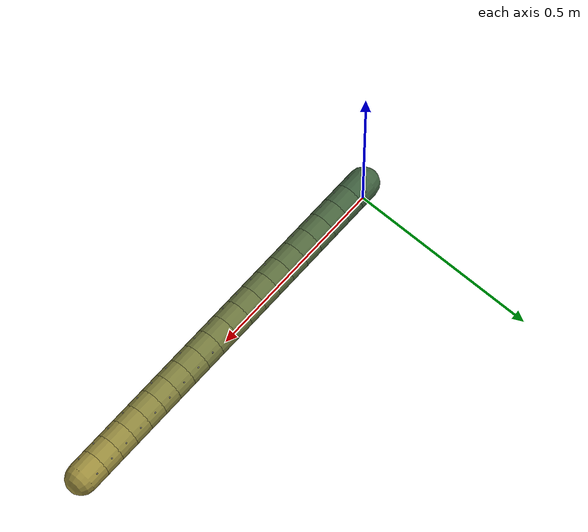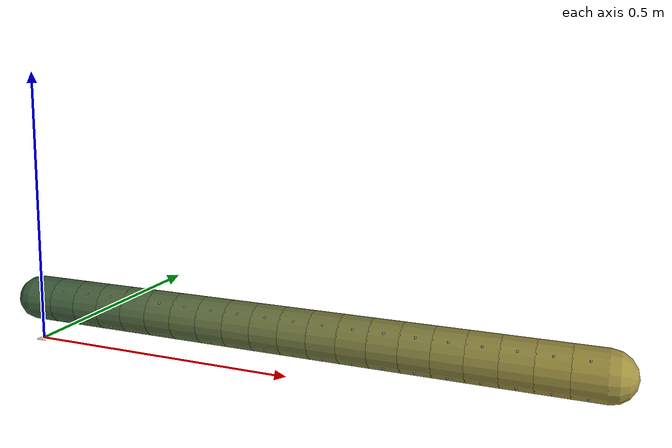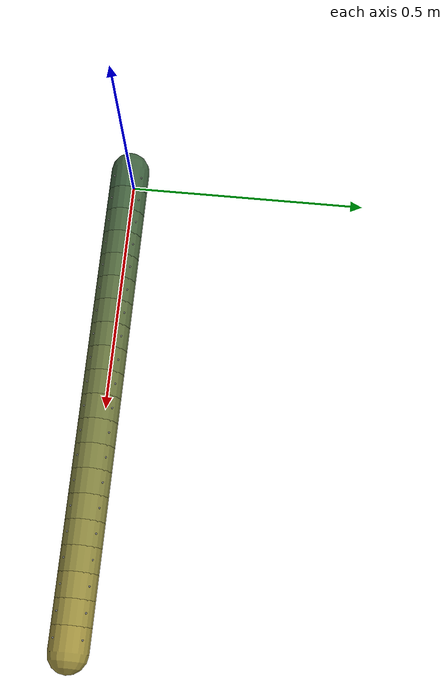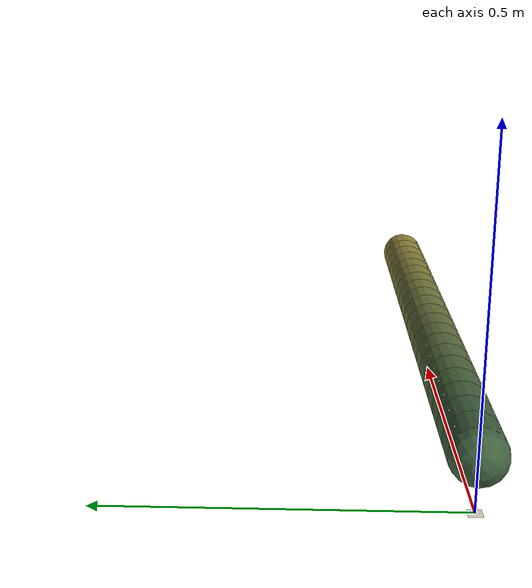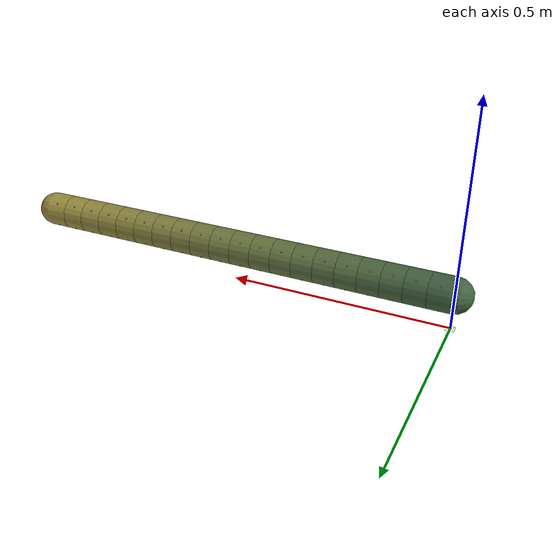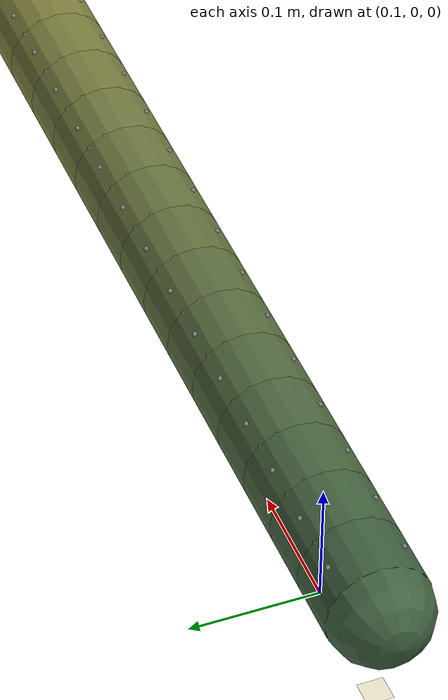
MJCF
<!-- Generated by scripts/build_wormbody_v2.py. 95-muscle innervation lives in motor_innervation.json. -->
<mujoco model="c_elegans_wormbody_v2">
  <compiler angle="radian" autolimits="true"/>
  <option timestep="0.0005" integrator="implicitfast" viscosity="1.0e-3" density="1000"/>
  <visual>
    <headlight diffuse="0.8 0.8 0.8" ambient="0.3 0.3 0.3" specular="0.2 0.2 0.2"/>
    <global offwidth="1200" offheight="800"/>
  </visual>
  <default>
    <joint damping="0.5" stiffness="0.0" limited="true" range="-0.5 0.5"/>
    <geom density="1000" friction="0.5 0.1 0.01"/>
    <position ctrllimited="true" ctrlrange="-0.5 0.5" kp="60.0" kv="2.0"/>
  </default>
  <worldbody>
    <geom name="substrate" type="plane" size="0.01 0.01 0.001" rgba="0.95 0.92 0.82 1"/>
    <light name="overhead" pos="0 0 0.02" dir="0 0 -1" diffuse="0.8 0.8 0.8"/>
    <body name="segment_0" pos="0 0 0.0800000" euler="0 0 0">
      <freejoint name="root"/>
      <geom name="geom_0" type="capsule" fromto="0 0 0 0.0500000 0 0" size="0.0400000" rgba="0.25 0.38 0.25 1"/>
      <site name="s0_DL" pos="0.025000 0.028000 0.028000" size="0.002"/>
      <site name="s0_DR" pos="0.025000 -0.028000 0.028000" size="0.002"/>
      <site name="s0_VL" pos="0.025000 0.028000 -0.028000" size="0.002"/>
      <site name="s0_VR" pos="0.025000 -0.028000 -0.028000" size="0.002"/>
      <body name="segment_1" pos="0.0500000 0 0">
        <joint name="hinge_1" type="hinge" axis="0 0 1"/>
        <geom name="geom_1" type="capsule" fromto="0 0 0 0.0500000 0 0" size="0.0400000" rgba="0.27 0.39 0.25 1"/>
        <site name="s1_DL" pos="0.025000 0.028000 0.028000" size="0.002"/>
        <site name="s1_DR" pos="0.025000 -0.028000 0.028000" size="0.002"/>
        <site name="s1_VL" pos="0.025000 0.028000 -0.028000" size="0.002"/>
        <site name="s1_VR" pos="0.025000 -0.028000 -0.028000" size="0.002"/>
        <body name="segment_2" pos="0.0500000 0 0">
          <joint name="hinge_2" type="hinge" axis="0 0 1"/>
          <geom name="geom_2" type="capsule" fromto="0 0 0 0.0500000 0 0" size="0.0400000" rgba="0.29 0.40 0.25 1"/>
          <site name="s2_DL" pos="0.025000 0.028000 0.028000" size="0.002"/>
          <site name="s2_DR" pos="0.025000 -0.028000 0.028000" size="0.002"/>
          <site name="s2_VL" pos="0.025000 0.028000 -0.028000" size="0.002"/>
          <site name="s2_VR" pos="0.025000 -0.028000 -0.028000" size="0.002"/>
          <body name="segment_3" pos="0.0500000 0 0">
            <joint name="hinge_3" type="hinge" axis="0 0 1"/>
            <geom name="geom_3" type="capsule" fromto="0 0 0 0.0500000 0 0" size="0.0400000" rgba="0.31 0.41 0.25 1"/>
            <site name="s3_DL" pos="0.025000 0.028000 0.028000" size="0.002"/>
            <site name="s3_DR" pos="0.025000 -0.028000 0.028000" size="0.002"/>
            <site name="s3_VL" pos="0.025000 0.028000 -0.028000" size="0.002"/>
            <site name="s3_VR" pos="0.025000 -0.028000 -0.028000" size="0.002"/>
            <body name="segment_4" pos="0.0500000 0 0">
              <joint name="hinge_4" type="hinge" axis="0 0 1"/>
              <geom name="geom_4" type="capsule" fromto="0 0 0 0.0500000 0 0" size="0.0400000" rgba="0.33 0.42 0.25 1"/>
              <site name="s4_DL" pos="0.025000 0.028000 0.028000" size="0.002"/>
              <site name="s4_DR" pos="0.025000 -0.028000 0.028000" size="0.002"/>
              <site name="s4_VL" pos="0.025000 0.028000 -0.028000" size="0.002"/>
              <site name="s4_VR" pos="0.025000 -0.028000 -0.028000" size="0.002"/>
              <body name="segment_5" pos="0.0500000 0 0">
                <joint name="hinge_5" type="hinge" axis="0 0 1"/>
                <geom name="geom_5" type="capsule" fromto="0 0 0 0.0500000 0 0" size="0.0400000" rgba="0.35 0.43 0.25 1"/>
                <site name="s5_DL" pos="0.025000 0.028000 0.028000" size="0.002"/>
                <site name="s5_DR" pos="0.025000 -0.028000 0.028000" size="0.002"/>
                <site name="s5_VL" pos="0.025000 0.028000 -0.028000" size="0.002"/>
                <site name="s5_VR" pos="0.025000 -0.028000 -0.028000" size="0.002"/>
                <body name="segment_6" pos="0.0500000 0 0">
                  <joint name="hinge_6" type="hinge" axis="0 0 1"/>
                  <geom name="geom_6" type="capsule" fromto="0 0 0 0.0500000 0 0" size="0.0400000" rgba="0.37 0.44 0.25 1"/>
                  <site name="s6_DL" pos="0.025000 0.028000 0.028000" size="0.002"/>
                  <site name="s6_DR" pos="0.025000 -0.028000 0.028000" size="0.002"/>
                  <site name="s6_VL" pos="0.025000 0.028000 -0.028000" size="0.002"/>
                  <site name="s6_VR" pos="0.025000 -0.028000 -0.028000" size="0.002"/>
                  <body name="segment_7" pos="0.0500000 0 0">
                    <joint name="hinge_7" type="hinge" axis="0 0 1"/>
                    <geom name="geom_7" type="capsule" fromto="0 0 0 0.0500000 0 0" size="0.0400000" rgba="0.39 0.45 0.25 1"/>
                    <site name="s7_DL" pos="0.025000 0.028000 0.028000" size="0.002"/>
                    <site name="s7_DR" pos="0.025000 -0.028000 0.028000" size="0.002"/>
                    <site name="s7_VL" pos="0.025000 0.028000 -0.028000" size="0.002"/>
                    <site name="s7_VR" pos="0.025000 -0.028000 -0.028000" size="0.002"/>
                    <body name="segment_8" pos="0.0500000 0 0">
                      <joint name="hinge_8" type="hinge" axis="0 0 1"/>
                      <geom name="geom_8" type="capsule" fromto="0 0 0 0.0500000 0 0" size="0.0400000" rgba="0.41 0.46 0.25 1"/>
                      <site name="s8_DL" pos="0.025000 0.028000 0.028000" size="0.002"/>
                      <site name="s8_DR" pos="0.025000 -0.028000 0.028000" size="0.002"/>
                      <site name="s8_VL" pos="0.025000 0.028000 -0.028000" size="0.002"/>
                      <site name="s8_VR" pos="0.025000 -0.028000 -0.028000" size="0.002"/>
                      <body name="segment_9" pos="0.0500000 0 0">
                        <joint name="hinge_9" type="hinge" axis="0 0 1"/>
                        <geom name="geom_9" type="capsule" fromto="0 0 0 0.0500000 0 0" size="0.0400000" rgba="0.43 0.47 0.25 1"/>
                        <site name="s9_DL" pos="0.025000 0.028000 0.028000" size="0.002"/>
                        <site name="s9_DR" pos="0.025000 -0.028000 0.028000" size="0.002"/>
                        <site name="s9_VL" pos="0.025000 0.028000 -0.028000" size="0.002"/>
                        <site name="s9_VR" pos="0.025000 -0.028000 -0.028000" size="0.002"/>
                        <body name="segment_10" pos="0.0500000 0 0">
                          <joint name="hinge_10" type="hinge" axis="0 0 1"/>
                          <geom name="geom_10" type="capsule" fromto="0 0 0 0.0500000 0 0" size="0.0400000" rgba="0.45 0.48 0.25 1"/>
                          <site name="s10_DL" pos="0.025000 0.028000 0.028000" size="0.002"/>
                          <site name="s10_DR" pos="0.025000 -0.028000 0.028000" size="0.002"/>
                          <site name="s10_VL" pos="0.025000 0.028000 -0.028000" size="0.002"/>
                          <site name="s10_VR" pos="0.025000 -0.028000 -0.028000" size="0.002"/>
                          <body name="segment_11" pos="0.0500000 0 0">
                            <joint name="hinge_11" type="hinge" axis="0 0 1"/>
                            <geom name="geom_11" type="capsule" fromto="0 0 0 0.0500000 0 0" size="0.0400000" rgba="0.47 0.49 0.25 1"/>
                            <site name="s11_DL" pos="0.025000 0.028000 0.028000" size="0.002"/>
                            <site name="s11_DR" pos="0.025000 -0.028000 0.028000" size="0.002"/>
                            <site name="s11_VL" pos="0.025000 0.028000 -0.028000" size="0.002"/>
                            <site name="s11_VR" pos="0.025000 -0.028000 -0.028000" size="0.002"/>
                            <body name="segment_12" pos="0.0500000 0 0">
                              <joint name="hinge_12" type="hinge" axis="0 0 1"/>
                              <geom name="geom_12" type="capsule" fromto="0 0 0 0.0500000 0 0" size="0.0400000" rgba="0.49 0.50 0.25 1"/>
                              <site name="s12_DL" pos="0.025000 0.028000 0.028000" size="0.002"/>
                              <site name="s12_DR" pos="0.025000 -0.028000 0.028000" size="0.002"/>
                              <site name="s12_VL" pos="0.025000 0.028000 -0.028000" size="0.002"/>
                              <site name="s12_VR" pos="0.025000 -0.028000 -0.028000" size="0.002"/>
                              <body name="segment_13" pos="0.0500000 0 0">
                                <joint name="hinge_13" type="hinge" axis="0 0 1"/>
                                <geom name="geom_13" type="capsule" fromto="0 0 0 0.0500000 0 0" size="0.0400000" rgba="0.51 0.51 0.25 1"/>
                                <site name="s13_DL" pos="0.025000 0.028000 0.028000" size="0.002"/>
                                <site name="s13_DR" pos="0.025000 -0.028000 0.028000" size="0.002"/>
                                <site name="s13_VL" pos="0.025000 0.028000 -0.028000" size="0.002"/>
                                <site name="s13_VR" pos="0.025000 -0.028000 -0.028000" size="0.002"/>
                                <body name="segment_14" pos="0.0500000 0 0">
                                  <joint name="hinge_14" type="hinge" axis="0 0 1"/>
                                  <geom name="geom_14" type="capsule" fromto="0 0 0 0.0500000 0 0" size="0.0400000" rgba="0.53 0.52 0.25 1"/>
                                  <site name="s14_DL" pos="0.025000 0.028000 0.028000" size="0.002"/>
                                  <site name="s14_DR" pos="0.025000 -0.028000 0.028000" size="0.002"/>
                                  <site name="s14_VL" pos="0.025000 0.028000 -0.028000" size="0.002"/>
                                  <site name="s14_VR" pos="0.025000 -0.028000 -0.028000" size="0.002"/>
                                  <body name="segment_15" pos="0.0500000 0 0">
                                    <joint name="hinge_15" type="hinge" axis="0 0 1"/>
                                    <geom name="geom_15" type="capsule" fromto="0 0 0 0.0500000 0 0" size="0.0400000" rgba="0.55 0.53 0.25 1"/>
                                    <site name="s15_DL" pos="0.025000 0.028000 0.028000" size="0.002"/>
                                    <site name="s15_DR" pos="0.025000 -0.028000 0.028000" size="0.002"/>
                                    <site name="s15_VL" pos="0.025000 0.028000 -0.028000" size="0.002"/>
                                    <site name="s15_VR" pos="0.025000 -0.028000 -0.028000" size="0.002"/>
                                    <body name="segment_16" pos="0.0500000 0 0">
                                      <joint name="hinge_16" type="hinge" axis="0 0 1"/>
                                      <geom name="geom_16" type="capsule" fromto="0 0 0 0.0500000 0 0" size="0.0400000" rgba="0.57 0.54 0.25 1"/>
                                      <site name="s16_DL" pos="0.025000 0.028000 0.028000" size="0.002"/>
                                      <site name="s16_DR" pos="0.025000 -0.028000 0.028000" size="0.002"/>
                                      <site name="s16_VL" pos="0.025000 0.028000 -0.028000" size="0.002"/>
                                      <site name="s16_VR" pos="0.025000 -0.028000 -0.028000" size="0.002"/>
                                      <body name="segment_17" pos="0.0500000 0 0">
                                        <joint name="hinge_17" type="hinge" axis="0 0 1"/>
                                        <geom name="geom_17" type="capsule" fromto="0 0 0 0.0500000 0 0" size="0.0400000" rgba="0.59 0.55 0.25 1"/>
                                        <site name="s17_DL" pos="0.025000 0.028000 0.028000" size="0.002"/>
                                        <site name="s17_DR" pos="0.025000 -0.028000 0.028000" size="0.002"/>
                                        <site name="s17_VL" pos="0.025000 0.028000 -0.028000" size="0.002"/>
                                        <site name="s17_VR" pos="0.025000 -0.028000 -0.028000" size="0.002"/>
                                        <body name="segment_18" pos="0.0500000 0 0">
                                          <joint name="hinge_18" type="hinge" axis="0 0 1"/>
                                          <geom name="geom_18" type="capsule" fromto="0 0 0 0.0500000 0 0" size="0.0400000" rgba="0.61 0.56 0.25 1"/>
                                          <site name="s18_DL" pos="0.025000 0.028000 0.028000" size="0.002"/>
                                          <site name="s18_DR" pos="0.025000 -0.028000 0.028000" size="0.002"/>
                                          <site name="s18_VL" pos="0.025000 0.028000 -0.028000" size="0.002"/>
                                          <site name="s18_VR" pos="0.025000 -0.028000 -0.028000" size="0.002"/>
                                          <body name="segment_19" pos="0.0500000 0 0">
                                            <joint name="hinge_19" type="hinge" axis="0 0 1"/>
                                            <geom name="geom_19" type="capsule" fromto="0 0 0 0.0500000 0 0" size="0.0400000" rgba="0.63 0.57 0.25 1"/>
                                            <site name="s19_DL" pos="0.025000 0.028000 0.028000" size="0.002"/>
                                            <site name="s19_DR" pos="0.025000 -0.028000 0.028000" size="0.002"/>
                                            <site name="s19_VL" pos="0.025000 0.028000 -0.028000" size="0.002"/>
                                            <site name="s19_VR" pos="0.025000 -0.028000 -0.028000" size="0.002"/>
                                          </body>
                                        </body>
                                      </body>
                                    </body>
                                  </body>
                                </body>
                              </body>
                            </body>
                          </body>
                        </body>
                      </body>
                    </body>
                  </body>
                </body>
              </body>
            </body>
          </body>
        </body>
      </body>
    </body>
  </worldbody>
  <actuator>
    <position name="act_hinge_1" joint="hinge_1" kp="60.0"/>
    <position name="act_hinge_2" joint="hinge_2" kp="60.0"/>
    <position name="act_hinge_3" joint="hinge_3" kp="60.0"/>
    <position name="act_hinge_4" joint="hinge_4" kp="60.0"/>
    <position name="act_hinge_5" joint="hinge_5" kp="60.0"/>
    <position name="act_hinge_6" joint="hinge_6" kp="60.0"/>
    <position name="act_hinge_7" joint="hinge_7" kp="60.0"/>
    <position name="act_hinge_8" joint="hinge_8" kp="60.0"/>
    <position name="act_hinge_9" joint="hinge_9" kp="60.0"/>
    <position name="act_hinge_10" joint="hinge_10" kp="60.0"/>
    <position name="act_hinge_11" joint="hinge_11" kp="60.0"/>
    <position name="act_hinge_12" joint="hinge_12" kp="60.0"/>
    <position name="act_hinge_13" joint="hinge_13" kp="60.0"/>
    <position name="act_hinge_14" joint="hinge_14" kp="60.0"/>
    <position name="act_hinge_15" joint="hinge_15" kp="60.0"/>
    <position name="act_hinge_16" joint="hinge_16" kp="60.0"/>
    <position name="act_hinge_17" joint="hinge_17" kp="60.0"/>
    <position name="act_hinge_18" joint="hinge_18" kp="60.0"/>
    <position name="act_hinge_19" joint="hinge_19" kp="60.0"/>
    <position name="muscle_0_DL" joint="hinge_1" kp="40.0" ctrlrange="-0.5 0.5"/>
    <position name="muscle_0_DR" joint="hinge_1" kp="40.0" ctrlrange="-0.5 0.5"/>
    <position name="muscle_0_VL" joint="hinge_1" kp="40.0" ctrlrange="-0.5 0.5"/>
    <position name="muscle_0_VR" joint="hinge_1" kp="40.0" ctrlrange="-0.5 0.5"/>
    <position name="muscle_1_DL" joint="hinge_1" kp="40.0" ctrlrange="-0.5 0.5"/>
    <position name="muscle_1_DR" joint="hinge_1" kp="40.0" ctrlrange="-0.5 0.5"/>
    <position name="muscle_1_VL" joint="hinge_1" kp="40.0" ctrlrange="-0.5 0.5"/>
    <position name="muscle_1_VR" joint="hinge_1" kp="40.0" ctrlrange="-0.5 0.5"/>
    <position name="muscle_2_DL" joint="hinge_2" kp="40.0" ctrlrange="-0.5 0.5"/>
    <position name="muscle_2_DR" joint="hinge_2" kp="40.0" ctrlrange="-0.5 0.5"/>
    <position name="muscle_2_VL" joint="hinge_2" kp="40.0" ctrlrange="-0.5 0.5"/>
    <position name="muscle_2_VR" joint="hinge_2" kp="40.0" ctrlrange="-0.5 0.5"/>
    <position name="muscle_3_DL" joint="hinge_3" kp="40.0" ctrlrange="-0.5 0.5"/>
    <position name="muscle_3_DR" joint="hinge_3" kp="40.0" ctrlrange="-0.5 0.5"/>
    <position name="muscle_3_VL" joint="hinge_3" kp="40.0" ctrlrange="-0.5 0.5"/>
    <position name="muscle_3_VR" joint="hinge_3" kp="40.0" ctrlrange="-0.5 0.5"/>
    <position name="muscle_4_DL" joint="hinge_4" kp="40.0" ctrlrange="-0.5 0.5"/>
    <position name="muscle_4_DR" joint="hinge_4" kp="40.0" ctrlrange="-0.5 0.5"/>
    <position name="muscle_4_VL" joint="hinge_4" kp="40.0" ctrlrange="-0.5 0.5"/>
    <position name="muscle_4_VR" joint="hinge_4" kp="40.0" ctrlrange="-0.5 0.5"/>
    <position name="muscle_5_DL" joint="hinge_5" kp="40.0" ctrlrange="-0.5 0.5"/>
    <position name="muscle_5_DR" joint="hinge_5" kp="40.0" ctrlrange="-0.5 0.5"/>
    <position name="muscle_5_VL" joint="hinge_5" kp="40.0" ctrlrange="-0.5 0.5"/>
    <position name="muscle_5_VR" joint="hinge_5" kp="40.0" ctrlrange="-0.5 0.5"/>
    <position name="muscle_6_DL" joint="hinge_6" kp="40.0" ctrlrange="-0.5 0.5"/>
    <position name="muscle_6_DR" joint="hinge_6" kp="40.0" ctrlrange="-0.5 0.5"/>
    <position name="muscle_6_VL" joint="hinge_6" kp="40.0" ctrlrange="-0.5 0.5"/>
    <position name="muscle_6_VR" joint="hinge_6" kp="40.0" ctrlrange="-0.5 0.5"/>
    <position name="muscle_7_DL" joint="hinge_7" kp="40.0" ctrlrange="-0.5 0.5"/>
    <position name="muscle_7_DR" joint="hinge_7" kp="40.0" ctrlrange="-0.5 0.5"/>
    <position name="muscle_7_VL" joint="hinge_7" kp="40.0" ctrlrange="-0.5 0.5"/>
    <position name="muscle_7_VR" joint="hinge_7" kp="40.0" ctrlrange="-0.5 0.5"/>
    <position name="muscle_8_DL" joint="hinge_8" kp="40.0" ctrlrange="-0.5 0.5"/>
    <position name="muscle_8_DR" joint="hinge_8" kp="40.0" ctrlrange="-0.5 0.5"/>
    <position name="muscle_8_VL" joint="hinge_8" kp="40.0" ctrlrange="-0.5 0.5"/>
    <position name="muscle_8_VR" joint="hinge_8" kp="40.0" ctrlrange="-0.5 0.5"/>
    <position name="muscle_9_DL" joint="hinge_9" kp="40.0" ctrlrange="-0.5 0.5"/>
    <position name="muscle_9_DR" joint="hinge_9" kp="40.0" ctrlrange="-0.5 0.5"/>
    <position name="muscle_9_VL" joint="hinge_9" kp="40.0" ctrlrange="-0.5 0.5"/>
    <position name="muscle_9_VR" joint="hinge_9" kp="40.0" ctrlrange="-0.5 0.5"/>
    <position name="muscle_10_DL" joint="hinge_10" kp="40.0" ctrlrange="-0.5 0.5"/>
    <position name="muscle_10_DR" joint="hinge_10" kp="40.0" ctrlrange="-0.5 0.5"/>
    <position name="muscle_10_VL" joint="hinge_10" kp="40.0" ctrlrange="-0.5 0.5"/>
    <position name="muscle_10_VR" joint="hinge_10" kp="40.0" ctrlrange="-0.5 0.5"/>
    <position name="muscle_11_DL" joint="hinge_11" kp="40.0" ctrlrange="-0.5 0.5"/>
    <position name="muscle_11_DR" joint="hinge_11" kp="40.0" ctrlrange="-0.5 0.5"/>
    <position name="muscle_11_VL" joint="hinge_11" kp="40.0" ctrlrange="-0.5 0.5"/>
    <position name="muscle_11_VR" joint="hinge_11" kp="40.0" ctrlrange="-0.5 0.5"/>
    <position name="muscle_12_DL" joint="hinge_12" kp="40.0" ctrlrange="-0.5 0.5"/>
    <position name="muscle_12_DR" joint="hinge_12" kp="40.0" ctrlrange="-0.5 0.5"/>
    <position name="muscle_12_VL" joint="hinge_12" kp="40.0" ctrlrange="-0.5 0.5"/>
    <position name="muscle_12_VR" joint="hinge_12" kp="40.0" ctrlrange="-0.5 0.5"/>
    <position name="muscle_13_DL" joint="hinge_13" kp="40.0" ctrlrange="-0.5 0.5"/>
    <position name="muscle_13_DR" joint="hinge_13" kp="40.0" ctrlrange="-0.5 0.5"/>
    <position name="muscle_13_VL" joint="hinge_13" kp="40.0" ctrlrange="-0.5 0.5"/>
    <position name="muscle_13_VR" joint="hinge_13" kp="40.0" ctrlrange="-0.5 0.5"/>
    <position name="muscle_14_DL" joint="hinge_14" kp="40.0" ctrlrange="-0.5 0.5"/>
    <position name="muscle_14_DR" joint="hinge_14" kp="40.0" ctrlrange="-0.5 0.5"/>
    <position name="muscle_14_VL" joint="hinge_14" kp="40.0" ctrlrange="-0.5 0.5"/>
    <position name="muscle_14_VR" joint="hinge_14" kp="40.0" ctrlrange="-0.5 0.5"/>
    <position name="muscle_15_DL" joint="hinge_15" kp="40.0" ctrlrange="-0.5 0.5"/>
    <position name="muscle_15_DR" joint="hinge_15" kp="40.0" ctrlrange="-0.5 0.5"/>
    <position name="muscle_15_VL" joint="hinge_15" kp="40.0" ctrlrange="-0.5 0.5"/>
    <position name="muscle_15_VR" joint="hinge_15" kp="40.0" ctrlrange="-0.5 0.5"/>
    <position name="muscle_16_DL" joint="hinge_16" kp="40.0" ctrlrange="-0.5 0.5"/>
    <position name="muscle_16_DR" joint="hinge_16" kp="40.0" ctrlrange="-0.5 0.5"/>
    <position name="muscle_16_VL" joint="hinge_16" kp="40.0" ctrlrange="-0.5 0.5"/>
    <position name="muscle_16_VR" joint="hinge_16" kp="40.0" ctrlrange="-0.5 0.5"/>
    <position name="muscle_17_DL" joint="hinge_17" kp="40.0" ctrlrange="-0.5 0.5"/>
    <position name="muscle_17_DR" joint="hinge_17" kp="40.0" ctrlrange="-0.5 0.5"/>
    <position name="muscle_17_VL" joint="hinge_17" kp="40.0" ctrlrange="-0.5 0.5"/>
    <position name="muscle_17_VR" joint="hinge_17" kp="40.0" ctrlrange="-0.5 0.5"/>
    <position name="muscle_18_DL" joint="hinge_18" kp="40.0" ctrlrange="-0.5 0.5"/>
    <position name="muscle_18_DR" joint="hinge_18" kp="40.0" ctrlrange="-0.5 0.5"/>
    <position name="muscle_18_VL" joint="hinge_18" kp="40.0" ctrlrange="-0.5 0.5"/>
    <position name="muscle_18_VR" joint="hinge_18" kp="40.0" ctrlrange="-0.5 0.5"/>
    <position name="muscle_19_DL" joint="hinge_19" kp="40.0" ctrlrange="-0.5 0.5"/>
    <position name="muscle_19_DR" joint="hinge_19" kp="40.0" ctrlrange="-0.5 0.5"/>
    <position name="muscle_19_VL" joint="hinge_19" kp="40.0" ctrlrange="-0.5 0.5"/>
    <position name="muscle_19_VR" joint="hinge_19" kp="40.0" ctrlrange="-0.5 0.5"/>
  </actuator>
</mujoco>
